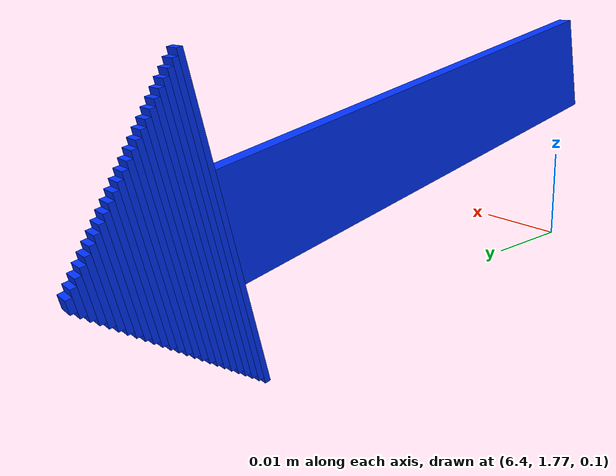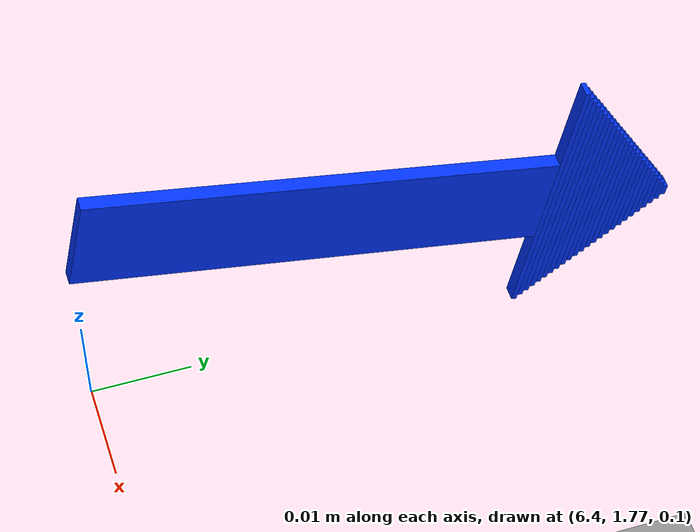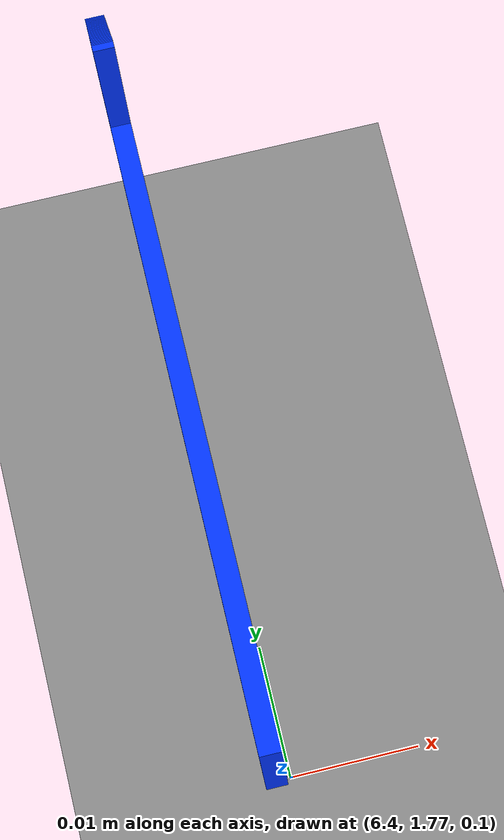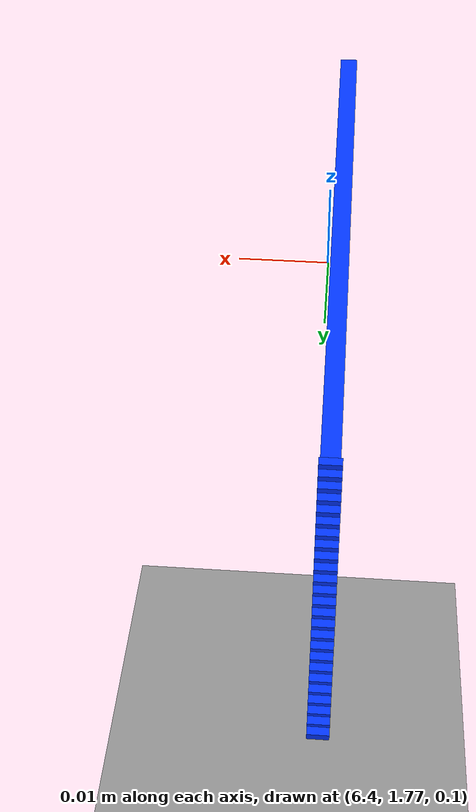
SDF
<sdf version="1.9">
 <world name="ros2_world">
  <model name="ground_plane">
   <static>true</static>
   <link name="link">
    <collision name="collision">
     <geometry><plane><normal>0 0 1</normal><size>30 30</size></plane></geometry>
    </collision>
    <visual name="visual">
     <geometry><plane><normal>0 0 1</normal><size>30 30</size></plane></geometry>
     <material><ambient>0.55 0.55 0.55 1</ambient><diffuse>0.55 0.55 0.55 1</diffuse></material>
    </visual>
   </link>
  </model>
  <model name="flechas">
   <static>true</static>
   <link name="flecha_16">
    <pose>6.39875 1.8 0.115 0 0.20944 1.5708</pose>
    <visual name="p0">
     <pose>-0.0065 0 0 0 0 0</pose>
     <geometry><box><size>0.047 0.0015 0.01</size></box></geometry>
     <material><ambient>0 0.2 1 1</ambient><diffuse>0 0.2 1 1</diffuse></material>
    </visual>
    <visual name="p1">
     <pose>0.01726 0 0 0 0 0</pose>
     <geometry><box><size>0.00052 0.0015 0.029</size></box></geometry>
     <material><ambient>0 0.2 1 1</ambient><diffuse>0 0.2 1 1</diffuse></material>
    </visual>
    <visual name="p2">
     <pose>0.01778 0 0 0 0 0</pose>
     <geometry><box><size>0.00052 0.0015 0.02784</size></box></geometry>
     <material><ambient>0 0.2 1 1</ambient><diffuse>0 0.2 1 1</diffuse></material>
    </visual>
    <visual name="p3">
     <pose>0.0183 0 0 0 0 0</pose>
     <geometry><box><size>0.00052 0.0015 0.02668</size></box></geometry>
     <material><ambient>0 0.2 1 1</ambient><diffuse>0 0.2 1 1</diffuse></material>
    </visual>
    <visual name="p4">
     <pose>0.01882 0 0 0 0 0</pose>
     <geometry><box><size>0.00052 0.0015 0.02552</size></box></geometry>
     <material><ambient>0 0.2 1 1</ambient><diffuse>0 0.2 1 1</diffuse></material>
    </visual>
    <visual name="p5">
     <pose>0.01934 0 0 0 0 0</pose>
     <geometry><box><size>0.00052 0.0015 0.02436</size></box></geometry>
     <material><ambient>0 0.2 1 1</ambient><diffuse>0 0.2 1 1</diffuse></material>
    </visual>
    <visual name="p6">
     <pose>0.01986 0 0 0 0 0</pose>
     <geometry><box><size>0.00052 0.0015 0.0232</size></box></geometry>
     <material><ambient>0 0.2 1 1</ambient><diffuse>0 0.2 1 1</diffuse></material>
    </visual>
    <visual name="p7">
     <pose>0.02038 0 0 0 0 0</pose>
     <geometry><box><size>0.00052 0.0015 0.02204</size></box></geometry>
     <material><ambient>0 0.2 1 1</ambient><diffuse>0 0.2 1 1</diffuse></material>
    </visual>
    <visual name="p8">
     <pose>0.0209 0 0 0 0 0</pose>
     <geometry><box><size>0.00052 0.0015 0.02088</size></box></geometry>
     <material><ambient>0 0.2 1 1</ambient><diffuse>0 0.2 1 1</diffuse></material>
    </visual>
    <visual name="p9">
     <pose>0.02142 0 0 0 0 0</pose>
     <geometry><box><size>0.00052 0.0015 0.01972</size></box></geometry>
     <material><ambient>0 0.2 1 1</ambient><diffuse>0 0.2 1 1</diffuse></material>
    </visual>
    <visual name="p10">
     <pose>0.02194 0 0 0 0 0</pose>
     <geometry><box><size>0.00052 0.0015 0.01856</size></box></geometry>
     <material><ambient>0 0.2 1 1</ambient><diffuse>0 0.2 1 1</diffuse></material>
    </visual>
    <visual name="p11">
     <pose>0.02246 0 0 0 0 0</pose>
     <geometry><box><size>0.00052 0.0015 0.0174</size></box></geometry>
     <material><ambient>0 0.2 1 1</ambient><diffuse>0 0.2 1 1</diffuse></material>
    </visual>
    <visual name="p12">
     <pose>0.02298 0 0 0 0 0</pose>
     <geometry><box><size>0.00052 0.0015 0.01624</size></box></geometry>
     <material><ambient>0 0.2 1 1</ambient><diffuse>0 0.2 1 1</diffuse></material>
    </visual>
    <visual name="p13">
     <pose>0.0235 0 0 0 0 0</pose>
     <geometry><box><size>0.00052 0.0015 0.01508</size></box></geometry>
     <material><ambient>0 0.2 1 1</ambient><diffuse>0 0.2 1 1</diffuse></material>
    </visual>
    <visual name="p14">
     <pose>0.02402 0 0 0 0 0</pose>
     <geometry><box><size>0.00052 0.0015 0.01392</size></box></geometry>
     <material><ambient>0 0.2 1 1</ambient><diffuse>0 0.2 1 1</diffuse></material>
    </visual>
    <visual name="p15">
     <pose>0.02454 0 0 0 0 0</pose>
     <geometry><box><size>0.00052 0.0015 0.01276</size></box></geometry>
     <material><ambient>0 0.2 1 1</ambient><diffuse>0 0.2 1 1</diffuse></material>
    </visual>
    <visual name="p16">
     <pose>0.02506 0 0 0 0 0</pose>
     <geometry><box><size>0.00052 0.0015 0.0116</size></box></geometry>
     <material><ambient>0 0.2 1 1</ambient><diffuse>0 0.2 1 1</diffuse></material>
    </visual>
    <visual name="p17">
     <pose>0.02558 0 0 0 0 0</pose>
     <geometry><box><size>0.00052 0.0015 0.01044</size></box></geometry>
     <material><ambient>0 0.2 1 1</ambient><diffuse>0 0.2 1 1</diffuse></material>
    </visual>
    <visual name="p18">
     <pose>0.0261 0 0 0 0 0</pose>
     <geometry><box><size>0.00052 0.0015 0.00928</size></box></geometry>
     <material><ambient>0 0.2 1 1</ambient><diffuse>0 0.2 1 1</diffuse></material>
    </visual>
    <visual name="p19">
     <pose>0.02662 0 0 0 0 0</pose>
     <geometry><box><size>0.00052 0.0015 0.00812</size></box></geometry>
     <material><ambient>0 0.2 1 1</ambient><diffuse>0 0.2 1 1</diffuse></material>
    </visual>
    <visual name="p20">
     <pose>0.02714 0 0 0 0 0</pose>
     <geometry><box><size>0.00052 0.0015 0.00696</size></box></geometry>
     <material><ambient>0 0.2 1 1</ambient><diffuse>0 0.2 1 1</diffuse></material>
    </visual>
    <visual name="p21">
     <pose>0.02766 0 0 0 0 0</pose>
     <geometry><box><size>0.00052 0.0015 0.0058</size></box></geometry>
     <material><ambient>0 0.2 1 1</ambient><diffuse>0 0.2 1 1</diffuse></material>
    </visual>
    <visual name="p22">
     <pose>0.02818 0 0 0 0 0</pose>
     <geometry><box><size>0.00052 0.0015 0.00464</size></box></geometry>
     <material><ambient>0 0.2 1 1</ambient><diffuse>0 0.2 1 1</diffuse></material>
    </visual>
    <visual name="p23">
     <pose>0.0287 0 0 0 0 0</pose>
     <geometry><box><size>0.00052 0.0015 0.00348</size></box></geometry>
     <material><ambient>0 0.2 1 1</ambient><diffuse>0 0.2 1 1</diffuse></material>
    </visual>
    <visual name="p24">
     <pose>0.02922 0 0 0 0 0</pose>
     <geometry><box><size>0.00052 0.0015 0.00232</size></box></geometry>
     <material><ambient>0 0.2 1 1</ambient><diffuse>0 0.2 1 1</diffuse></material>
    </visual>
    <visual name="p25">
     <pose>0.02974 0 0 0 0 0</pose>
     <geometry><box><size>0.00052 0.0015 0.00116</size></box></geometry>
     <material><ambient>0 0.2 1 1</ambient><diffuse>0 0.2 1 1</diffuse></material>
    </visual>
   </link>
  </model>
 </world>
</sdf>
